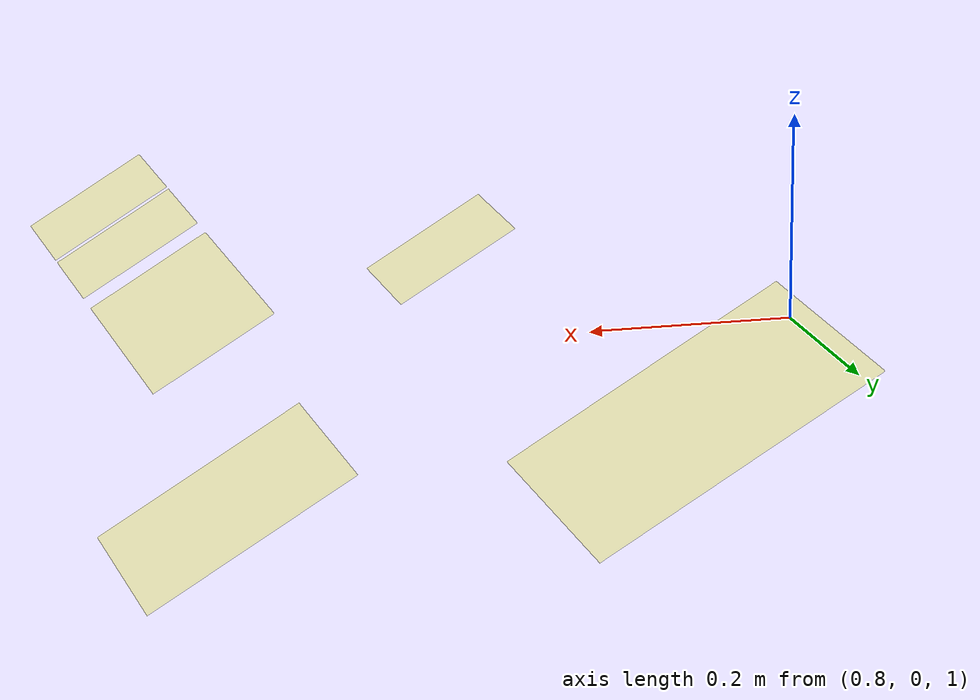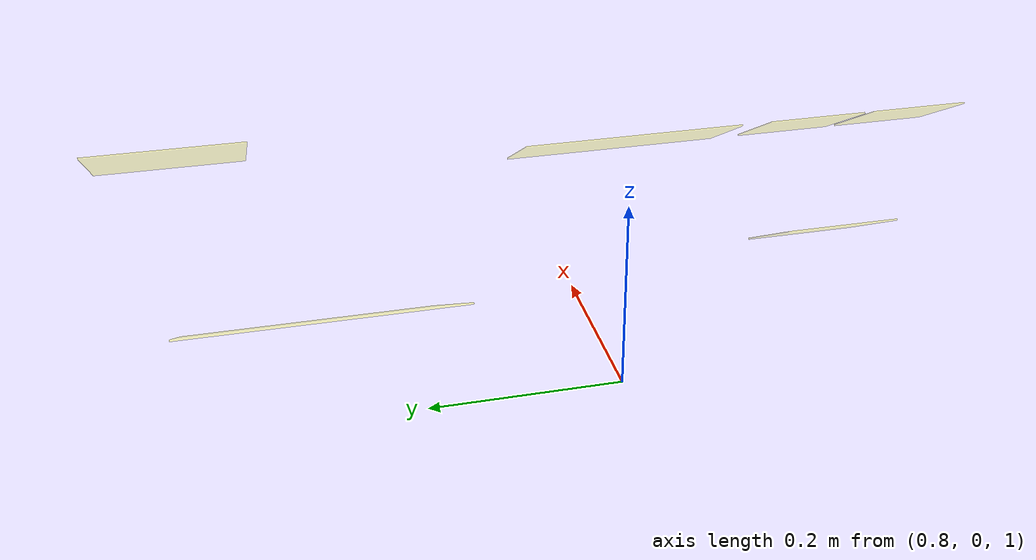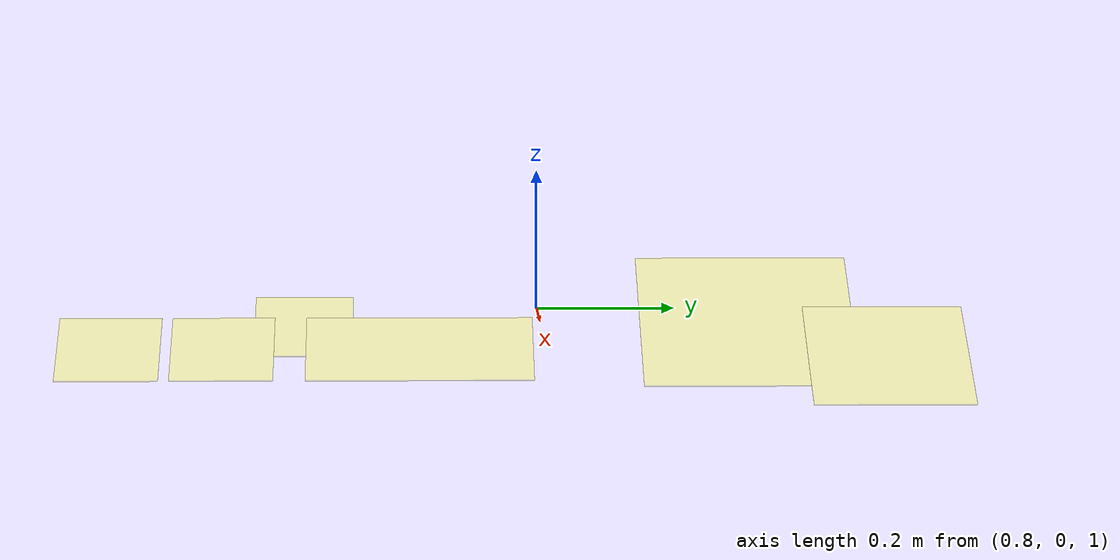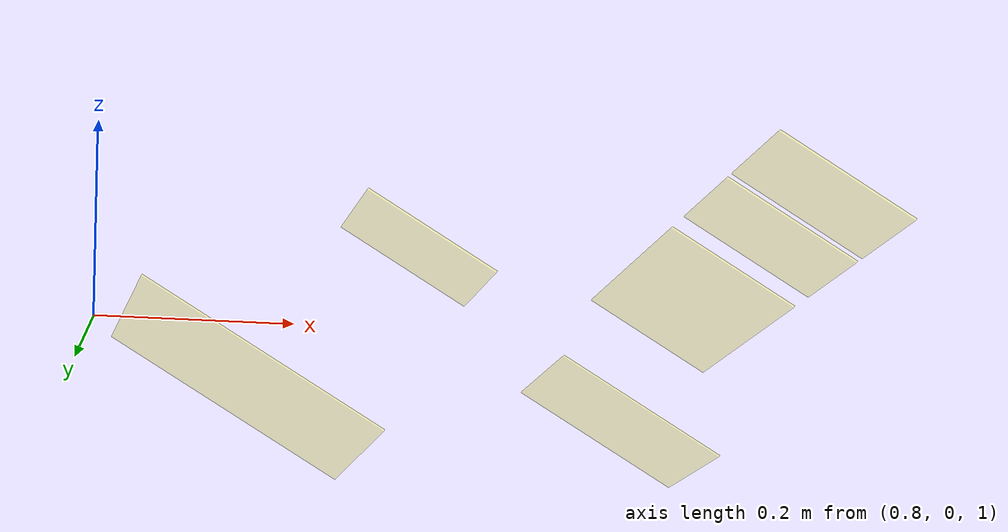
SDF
<?xml version='1.0'?>
<sdf version='1.7'>
  <model name='zones'>

    <link name='z0'>
      <inertial>
        <mass>1</mass>
        <inertia>
          <ixx>0.166667</ixx>
          <ixy>0</ixy>
          <ixz>0</ixz>
          <iyy>0.166667</iyy>
          <iyz>0</iyz>
          <izz>0.166667</izz>
        </inertia>
        <pose>0 0 0 0 -0 0</pose>
      </inertial>
      <self_collide>0</self_collide>
      <enable_wind>0</enable_wind>
      <kinematic>0</kinematic>
      <pose>0.99 0.29 1.0 0 0.541 0</pose>
      <gravity>0</gravity>
      <visual name='visual'>
        <geometry>
          <box>
            <size>0.30 0.30 0.001899</size>
          </box>
        </geometry>
        <material>
          <script>
            <name>Gazebo/Grey</name>
            <uri>file://media/materials/scripts/gazebo.material</uri>
          </script>
          <shader type='pixel'>
            <normal_map>__default__</normal_map>
          </shader>
          <ambient>1 1 0 0</ambient>
          <diffuse>0.7 0.7 0.7 1</diffuse>
          <specular>0.01 0.01 0.01 1</specular>
          <emissive>0 0 0 1</emissive>
        </material>
        <pose>0 0 0 0 -0 0</pose>
        <transparency>0.7</transparency>
        <cast_shadows>1</cast_shadows>
      </visual>
    </link>

    <link name='z1'>
      <inertial>
        <mass>1</mass>
        <inertia>
          <ixx>0.166667</ixx>
          <ixy>0</ixy>
          <ixz>0</ixz>
          <iyy>0.166667</iyy>
          <iyz>0</iyz>
          <izz>0.166667</izz>
        </inertia>
        <pose>0 0 0 0 -0 0</pose>
      </inertial>
      <self_collide>0</self_collide>
      <enable_wind>0</enable_wind>
      <kinematic>0</kinematic>
      <pose>1.06 -0.33 1.0 0 0.541 0</pose>
      <gravity>0</gravity>
      <visual name='visual'>
        <geometry>
          <box>
            <size>0.135842 0.135842 0.001899</size>
          </box>
        </geometry>
        <material>
          <script>
            <name>Gazebo/Grey</name>
            <uri>file://media/materials/scripts/gazebo.material</uri>
          </script>
          <shader type='pixel'>
            <normal_map>__default__</normal_map>
          </shader>
          <ambient>1 1 0 0</ambient>
          <diffuse>0.7 0.7 0.7 1</diffuse>
          <specular>0.01 0.01 0.01 1</specular>
          <emissive>0 0 0 1</emissive>
        </material>
        <pose>0 0 0 0 -0 0</pose>
        <transparency>0.7</transparency>
        <cast_shadows>1</cast_shadows>
      </visual>
    </link>

    <link name='z2'>
      <inertial>
        <mass>1</mass>
        <inertia>
          <ixx>0.166667</ixx>
          <ixy>0</ixy>
          <ixz>0</ixz>
          <iyy>0.166667</iyy>
          <iyz>0</iyz>
          <izz>0.166667</izz>
        </inertia>
        <pose>0 0 0 0 -0 0</pose>
      </inertial>
      <self_collide>0</self_collide>
      <enable_wind>0</enable_wind>
      <kinematic>0</kinematic>
      <pose>1.36 -0.58 1.0 0 0.541 0</pose>
      <gravity>0</gravity>
      <visual name='visual'>
        <geometry>
          <box>
            <size>0.135842 0.135842 0.001899</size>
          </box>
        </geometry>
        <material>
          <script>
            <name>Gazebo/Grey</name>
            <uri>file://media/materials/scripts/gazebo.material</uri>
          </script>
          <shader type='pixel'>
            <normal_map>__default__</normal_map>
          </shader>
          <ambient>1 1 0 0</ambient>
          <diffuse>0.7 0.7 0.7 1</diffuse>
          <specular>0.01 0.01 0.01 1</specular>
          <emissive>0 0 0 1</emissive>
        </material>
        <pose>0 0 0 0 -0 0</pose>
        <transparency>0.7</transparency>
        <cast_shadows>1</cast_shadows>
      </visual>
    </link>

    <link name='z3'>
      <inertial>
        <mass>1</mass>
        <inertia>
          <ixx>0.166667</ixx>
          <ixy>0</ixy>
          <ixz>0</ixz>
          <iyy>0.166667</iyy>
          <iyz>0</iyz>
          <izz>0.166667</izz>
        </inertia>
        <pose>0 0 0 0 -0 0</pose>
      </inertial>
      <self_collide>0</self_collide>
      <enable_wind>0</enable_wind>
      <kinematic>0</kinematic>
      <pose>1.36 -0.43 1.0 0 0.541 0</pose>
      <gravity>0</gravity>
      <visual name='visual'>
        <geometry>
          <box>
            <size>0.135842 0.135842 0.001899</size>
          </box>
        </geometry>
        <material>
          <script>
            <name>Gazebo/Grey</name>
            <uri>file://media/materials/scripts/gazebo.material</uri>
          </script>
          <shader type='pixel'>
            <normal_map>__default__</normal_map>
          </shader>
          <ambient>1 1 0 0</ambient>
          <diffuse>0.7 0.7 0.7 1</diffuse>
          <specular>0.01 0.01 0.01 1</specular>
          <emissive>0 0 0 1</emissive>
        </material>
        <pose>0 0 0 0 -0 0</pose>
        <transparency>0.7</transparency>
        <cast_shadows>1</cast_shadows>
      </visual>
    </link>

    <link name='z4'>
      <inertial>
        <mass>1</mass>
        <inertia>
          <ixx>0.166667</ixx>
          <ixy>0</ixy>
          <ixz>0</ixz>
          <iyy>0.166667</iyy>
          <iyz>0</iyz>
          <izz>0.166667</izz>
        </inertia>
        <pose>0 0 0 0 -0 0</pose>
      </inertial>
      <self_collide>0</self_collide>
      <enable_wind>0</enable_wind>
      <kinematic>0</kinematic>
      <pose>1.36 -0.17 1.0 0 0.541 0</pose>
      <gravity>0</gravity>
      <visual name='visual'>
        <geometry>
          <box>
            <size>0.135842 0.30 0.001899</size>
          </box>
        </geometry>
        <material>
          <script>
            <name>Gazebo/Grey</name>
            <uri>file://media/materials/scripts/gazebo.material</uri>
          </script>
          <shader type='pixel'>
            <normal_map>__default__</normal_map>
          </shader>
          <ambient>1 1 0 0</ambient>
          <diffuse>0.7 0.7 0.7 1</diffuse>
          <specular>0.01 0.01 0.01 1</specular>
          <emissive>0 0 0 1</emissive>
        </material>
        <pose>0 0 0 0 -0 0</pose>
        <transparency>0.7</transparency>
        <cast_shadows>1</cast_shadows>
      </visual>
    </link>

    <link name='z5'>
      <inertial>
        <mass>1</mass>
        <inertia>
          <ixx>0.166667</ixx>
          <ixy>0</ixy>
          <ixz>0</ixz>
          <iyy>0.166667</iyy>
          <iyz>0</iyz>
          <izz>0.166667</izz>
        </inertia>
        <pose>0 0 0 0 -0 0</pose>
      </inertial>
      <self_collide>0</self_collide>
      <enable_wind>0</enable_wind>
      <kinematic>0</kinematic>
      <pose>1.45 0.44 1.0 0 0.541 0</pose>
      <gravity>0</gravity>
      <visual name='visual'>
        <geometry>
          <box>
            <size>0.21 0.21 0.001899</size>
          </box>
        </geometry>
        <material>
          <script>
            <name>Gazebo/Grey</name>
            <uri>file://media/materials/scripts/gazebo.material</uri>
          </script>
          <shader type='pixel'>
            <normal_map>__default__</normal_map>
          </shader>
          <ambient>1 1 0 0</ambient>
          <diffuse>0.7 0.7 0.7 1</diffuse>
          <specular>0.01 0.01 0.01 1</specular>
          <emissive>0 0 0 1</emissive>
        </material>
        <pose>0 0 0 0 -0 0</pose>
        <transparency>0.7</transparency>
        <cast_shadows>1</cast_shadows>
      </visual>
    </link>

    <static>0</static>
    <allow_auto_disable>1</allow_auto_disable>
  </model>
</sdf>
